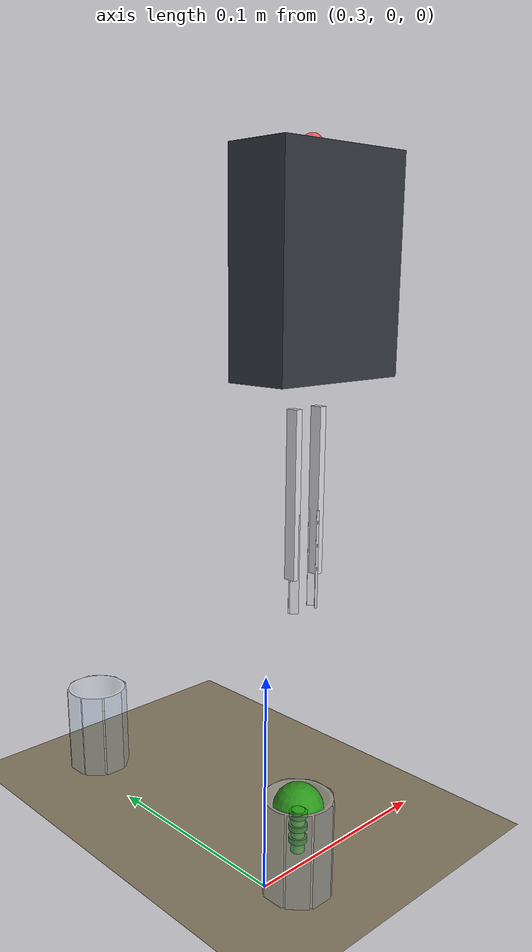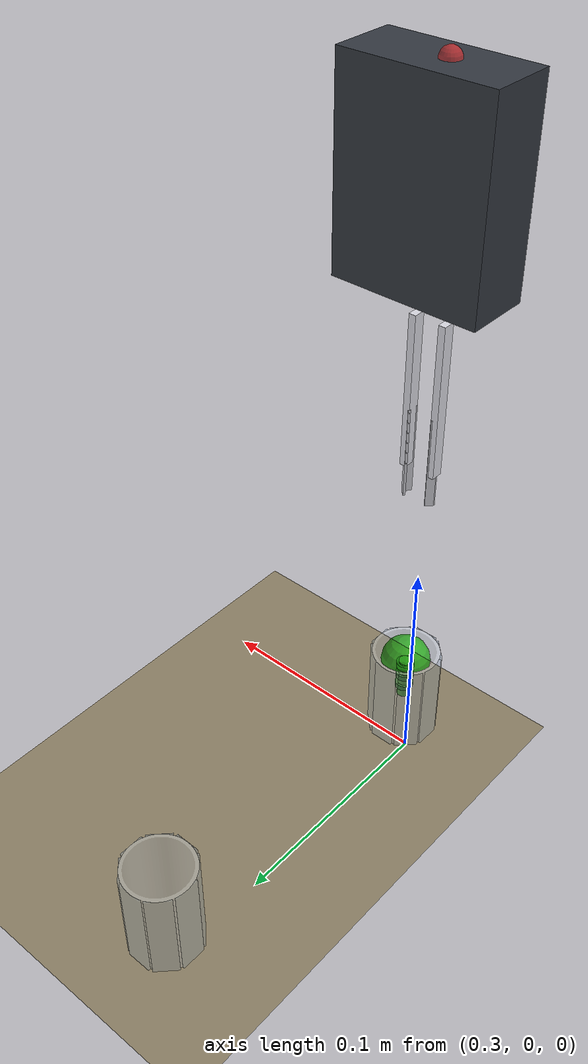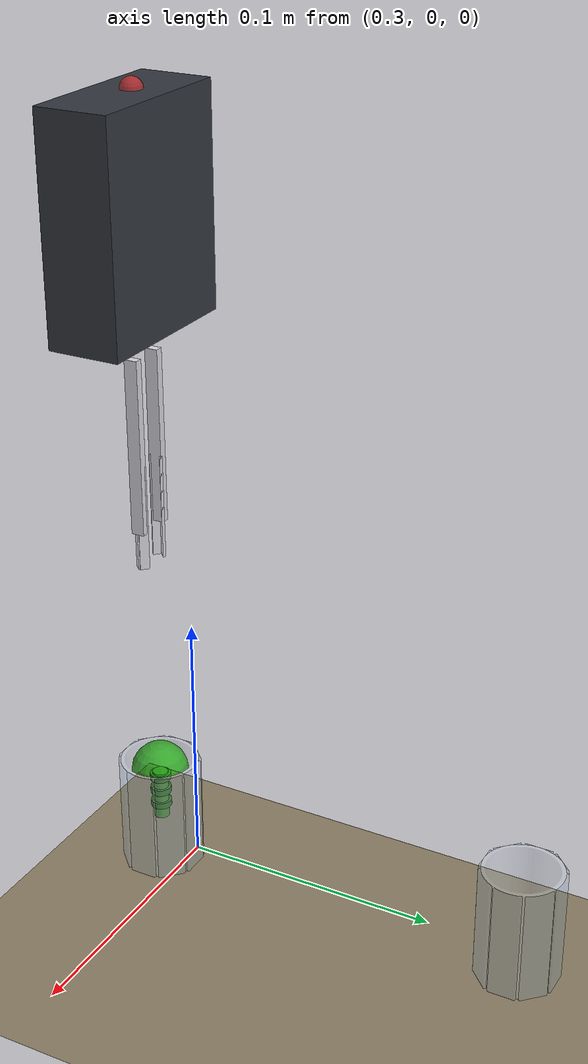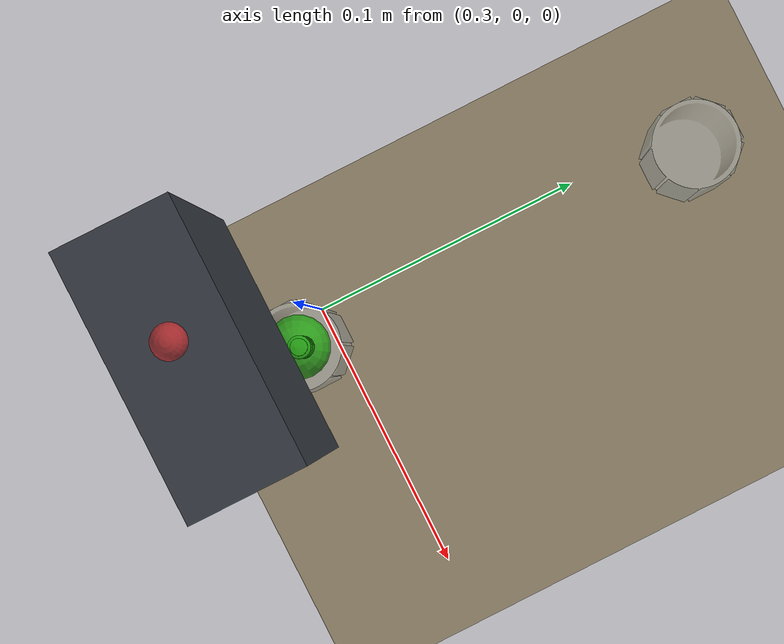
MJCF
<mujoco model="zimmer_vial_test">

  <compiler angle="radian" balanceinertia="true"/>

  <option gravity="0 0 -9.81" timestep="0.0002" integrator="implicitfast"
          iterations="100" noslip_iterations="10" tolerance="1e-10">
    <flag contact="enable"/>
  </option>
  <size njmax="500" nconmax="500"/>

  <asset>
    <mesh name="wide_vial" file="../wide_vial/meshes/wide_vial.stl"
          scale="0.001 0.001 0.000643"/>
  </asset>

  <default>
    <geom condim="6" friction="1.0 0.005 0.0001" solimp="0 0.999 0.0001 0.5 2" solref="0.0005 1"/>
    <joint armature="0.0001" damping="0.5"/>
  </default>

  <worldbody>

    <!-- ── Floor ─────────────────────────────────────────────────────────── -->
    <geom name="floor" type="plane" size="2 2 0.1" rgba="0.55 0.50 0.40 1"
          friction="0.5 0.005 0.0001"/>

    <!-- ── Kinematic TCP controller (mocap) ──────────────────────────────── -->
    <body name="tcp" pos="0.31 -0.01 0.300" mocap="true">
      <geom type="sphere" size="0.004" rgba="1 0.2 0.2 0.6"
            contype="0" conaffinity="0"/>
    </body>

    <!-- ── Plant (free rigid body, spawns inside source vial) ────────────── -->
    <body name="plant" pos="0.31 -0.01 0">
      <freejoint name="plant_freejoint"/>
      <inertial pos="0 0 0.025" mass="0.002"
                diaginertia="8e-8 8e-8 1e-8"/>
      <geom name="stem"  type="cylinder" pos="0 0 0.029" size="0.003 0.010"
            friction="3.0 0.01 0.001" rgba="0.35 0.60 0.20 1"/>
      <geom name="node1" type="cylinder" pos="0 0 0.025" size="0.004 0.00125"
            friction="3.0 0.01 0.001" rgba="0.25 0.50 0.15 1"/>
      <geom name="node2" type="cylinder" pos="0 0 0.031" size="0.004 0.00125"
            friction="3.0 0.01 0.001" rgba="0.25 0.50 0.15 1"/>
      <geom name="node3" type="cylinder" pos="0 0 0.037" size="0.004 0.00125"
            friction="3.0 0.01 0.001" rgba="0.25 0.50 0.15 1"/>
      <geom type="sphere" pos="0 0 0.040" size="0.011"
            rgba="0.15 0.70 0.10 0.8" contype="0" conaffinity="0"/>
    </body>

    <!-- ── Source vial (static) ──────────────────────────────────────────── -->
    <body name="source_vial" pos="0.31 -0.01 0">
      <geom type="mesh" mesh="wide_vial" rgba="0.85 0.90 0.95 0.35"
            contype="0" conaffinity="0"/>
      <geom type="box" size="0.00075 0.0053 0.0225" pos=" 0.01425  0        0.0225" euler="0 0 0"      rgba="0.5 0.7 0.9 0.06"/>
      <geom type="box" size="0.00075 0.0053 0.0225" pos=" 0.01008  0.01008  0.0225" euler="0 0 0.785"  rgba="0.5 0.7 0.9 0.06"/>
      <geom type="box" size="0.00075 0.0053 0.0225" pos=" 0        0.01425  0.0225" euler="0 0 1.571"  rgba="0.5 0.7 0.9 0.06"/>
      <geom type="box" size="0.00075 0.0053 0.0225" pos="-0.01008  0.01008  0.0225" euler="0 0 2.356"  rgba="0.5 0.7 0.9 0.06"/>
      <geom type="box" size="0.00075 0.0053 0.0225" pos="-0.01425  0        0.0225" euler="0 0 3.142"  rgba="0.5 0.7 0.9 0.06"/>
      <geom type="box" size="0.00075 0.0053 0.0225" pos="-0.01008 -0.01008  0.0225" euler="0 0 -2.356" rgba="0.5 0.7 0.9 0.06"/>
      <geom type="box" size="0.00075 0.0053 0.0225" pos=" 0       -0.01425  0.0225" euler="0 0 -1.571" rgba="0.5 0.7 0.9 0.06"/>
      <geom type="box" size="0.00075 0.0053 0.0225" pos=" 0.01008 -0.01008  0.0225" euler="0 0 -0.785" rgba="0.5 0.7 0.9 0.06"/>
    </body>

    <!-- ── Destination vial (static, 150 mm in +Y) ───────────────────────── -->
    <body name="dest_vial" pos="0.31 0.14 0">
      <geom type="mesh" mesh="wide_vial" rgba="0.85 0.90 0.95 0.35"
            contype="0" conaffinity="0"/>
      <geom type="box" size="0.00075 0.0053 0.0225" pos=" 0.01425  0        0.0225" euler="0 0 0"      rgba="0.5 0.7 0.9 0.06"/>
      <geom type="box" size="0.00075 0.0053 0.0225" pos=" 0.01008  0.01008  0.0225" euler="0 0 0.785"  rgba="0.5 0.7 0.9 0.06"/>
      <geom type="box" size="0.00075 0.0053 0.0225" pos=" 0        0.01425  0.0225" euler="0 0 1.571"  rgba="0.5 0.7 0.9 0.06"/>
      <geom type="box" size="0.00075 0.0053 0.0225" pos="-0.01008  0.01008  0.0225" euler="0 0 2.356"  rgba="0.5 0.7 0.9 0.06"/>
      <geom type="box" size="0.00075 0.0053 0.0225" pos="-0.01425  0        0.0225" euler="0 0 3.142"  rgba="0.5 0.7 0.9 0.06"/>
      <geom type="box" size="0.00075 0.0053 0.0225" pos="-0.01008 -0.01008  0.0225" euler="0 0 -2.356" rgba="0.5 0.7 0.9 0.06"/>
      <geom type="box" size="0.00075 0.0053 0.0225" pos=" 0       -0.01425  0.0225" euler="0 0 -1.571" rgba="0.5 0.7 0.9 0.06"/>
      <geom type="box" size="0.00075 0.0053 0.0225" pos=" 0.01008 -0.01008  0.0225" euler="0 0 -0.785" rgba="0.5 0.7 0.9 0.06"/>
    </body>

    <!-- ── Zimmer GEP2010IL gripper (welded to tcp mocap) ────────────────── -->
    <body name="gripper_base" pos="0.31 -0.01 0.300">
      <freejoint name="gripper_freejoint"/>
      <inertial pos="0.004 0 -0.040" mass="0.25"
                diaginertia="1.5e-4 1.6e-4 6.0e-5"/>
      <geom type="box" size="0.031 0.0135 0.040" pos="0.004 0 -0.040"
            rgba="0.20 0.22 0.25 1" contype="0" conaffinity="0"/>

      <body name="finger_left" pos="-0.005 0 -0.080">
        <joint name="finger_left_joint" type="slide" axis="1 0 0"
               range="0 0.010" damping="2.0" armature="0.0001"/>
        <inertial pos="-0.0015 0 -0.050" mass="0.008"
                  diaginertia="1.74e-5 1.73e-5 2.4e-8"/>
        <geom name="fl_blade" type="box"
              pos="-0.0015 0 -0.043" size="0.0015 0.0025 0.033"
              friction="3.0 0.01 0.001" rgba="0.85 0.85 0.88 1"/>
        <geom name="fl_prong_py" type="box"
              pos="-0.00125 0.00125 -0.070" euler="0 0 -2.356"
              size="0.00175 0.0005 0.020"
              friction="3.0 0.01 0.001" rgba="0.85 0.85 0.88 1"/>
        <geom name="fl_prong_ny" type="box"
              pos="-0.00125 -0.00125 -0.070" euler="0 0 2.356"
              size="0.00175 0.0005 0.020"
              friction="3.0 0.01 0.001" rgba="0.85 0.85 0.88 1"/>
      </body>

      <body name="finger_right" pos="0.005 0 -0.080">
        <joint name="finger_right_joint" type="slide" axis="-1 0 0"
               range="0 0.010" damping="2.0" armature="0.0001"/>
        <inertial pos="0.0015 0 -0.050" mass="0.008"
                  diaginertia="1.74e-5 1.73e-5 2.4e-8"/>
        <geom name="fr_blade" type="box"
              pos="0.0015 0 -0.043" size="0.0015 0.0025 0.033"
              friction="3.0 0.01 0.001" rgba="0.85 0.85 0.88 1"/>
        <geom name="fr_prong_py" type="box"
              pos="0.00125 0.00125 -0.070" euler="0 0 -0.785"
              size="0.00175 0.0005 0.020"
              friction="3.0 0.01 0.001" rgba="0.85 0.85 0.88 1"/>
        <geom name="fr_prong_ny" type="box"
              pos="0.00125 -0.00125 -0.070" euler="0 0 0.785"
              size="0.00175 0.0005 0.020"
              friction="3.0 0.01 0.001" rgba="0.85 0.85 0.88 1"/>
      </body>
    </body>

  </worldbody>

  <!-- ── Contact exclusions ───────────────────────────────────────────────── -->
  <contact>
    <exclude body1="finger_left"  body2="gripper_base"/>
    <exclude body1="finger_right" body2="gripper_base"/>
    <exclude body1="finger_left"  body2="finger_right"/>
    <!-- Gripper fits inside vial with 5.5 mm clearance; exclude to prevent
         accidental wall nudges from perturbing the descent trajectory. -->
    <exclude body1="finger_left"  body2="source_vial"/>
    <exclude body1="finger_right" body2="source_vial"/>
    <exclude body1="gripper_base" body2="source_vial"/>
    <exclude body1="finger_left"  body2="dest_vial"/>
    <exclude body1="finger_right" body2="dest_vial"/>
    <exclude body1="gripper_base" body2="dest_vial"/>
  </contact>

  <!-- ── Weld gripper to mocap TCP ────────────────────────────────────────── -->
  <equality>
    <weld name="gripper_tcp_weld" body1="tcp" body2="gripper_base"
          solref="0.0002 1" solimp="0 0.999999 0.000001 0.5 2"/>
  </equality>

  <!-- ── Finger actuators ──────────────────────────────────────────────────── -->
  <actuator>
    <position name="finger_left_act"  joint="finger_left_joint"
              kp="25000" kv="10" ctrlrange="0 0.010"/>
    <position name="finger_right_act" joint="finger_right_joint"
              kp="25000" kv="10" ctrlrange="0 0.010"/>
  </actuator>

</mujoco>
